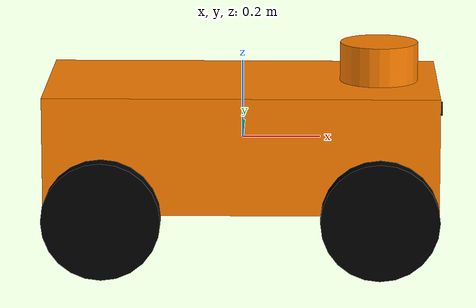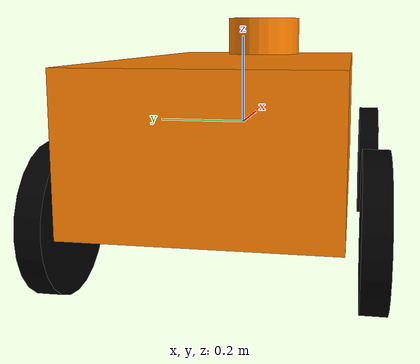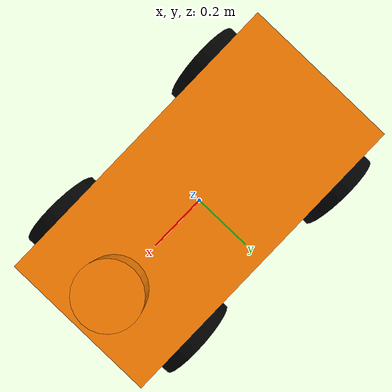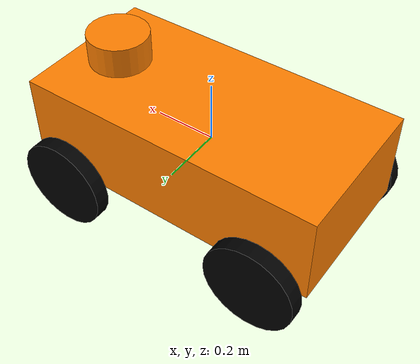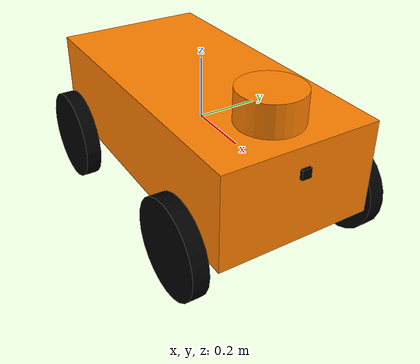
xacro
<?xml version="1.0"?>
<robot xmlns:xacro="http://www.ros.org/wiki/xacro" name="rover">
    <!-- to specify colours -->
    <material name="orange">
        <color rgba="1 0.5 0 1"/>
    </material>
    <material name="black">
        <color rgba="0 0 0 1"/>
    </material>

    <!-- argument: use for sensor topic namespacing -->
    <xacro:arg name="robot_name" default="rover"/>

    <!-- properties -->
    <xacro:property name="wheel_radius" value="0.15"/>
    <xacro:property name="wheel_width" value="0.05"/>
    <xacro:property name="chassis_length" value="1.0"/>
    <xacro:property name="chassis_width" value="0.5"/>
    <xacro:property name="chassis_height" value="0.3"/>
    <xacro:property name="wheel_mass" value="2"/>
    <xacro:property name="chassis_mass" value="10"/>
    <xacro:property name="camera_size" value="0.03"/>
    <xacro:property name="camera_thickness" value="0.01"/>
    <xacro:property name="lidar_size" value="0.1"/>
    <xacro:property name="odometry_update_rate" value="30"/>

    <!-- macros -->
    <xacro:macro name="box_inertia" params="mass l w h">
        <inertial>
            <mass value="${mass}"/>
            <inertia ixx="${mass * (h*h + w*w) / 12}" ixy="0" ixz="0" iyy="${mass * (l*l + h*h) / 12}" iyz="0" izz="${mass * (l*l + w*w) / 12}"/>
        </inertial>
    </xacro:macro>

    <xacro:macro name="cylinder_inertia" params="mass radius width">
        <inertial>
            <mass value="${mass}"/>
            <inertia ixx="${0.25 * mass * radius * radius + (1/12) * mass * width * width}" ixy="0" ixz="0" iyy="${0.25 * mass * radius * radius + (1/12) * mass * width * width}" iyz="0" izz="${0.5 * mass * radius * radius}"/>
        </inertial>
    </xacro:macro>

    <xacro:macro name="wheel" params="name wheel_radius wheel_width wheel_mass">
        <link name="${name}">
            <visual>
                <geometry>
                    <cylinder length="${wheel_width}" radius="${wheel_radius}"/>
                </geometry>
                <origin rpy="-1.57075 0 0" xyz="0 0 0"/>
                <material name="black"/>
            </visual>
            <collision>
                <geometry>
                    <cylinder length="${wheel_width}" radius="${wheel_radius}"/>
                </geometry>
                <origin rpy="-1.57075 0 0" xyz="0 0 0"/>
            </collision>
            <xacro:cylinder_inertia mass="${wheel_mass}" radius="${wheel_radius}" width="${wheel_width}"/>
        </link>
    </xacro:macro>

    <xacro:macro name="wheel_joints" params="wheel_name x y z">
        <joint name="${wheel_name}_joint" type="continuous">
            <parent link="chassis"/>
            <child link="${wheel_name}"/>
            <origin rpy="0 0 0" xyz="${x} ${y} ${z}"/>
            <axis xyz="0 1 0"/>
        </joint>
    </xacro:macro>

    <xacro:macro name="friction_coefficients" params="link_name">
        <gazebo reference="${link_name}">
            <mu1>1.0</mu1> <!-- High friction for forward traction -->
            <mu2>0.5</mu2> <!-- Low friction for sideways skidding -->
            <fdir1>1 0 0</fdir1> <!-- Rolling direction (X-axis of the link) -->
            <slip1>0.0</slip1>
            <slip2>0.1</slip2> <!-- Allow sliding on the lateral axis -->
        </gazebo>
    </xacro:macro>

    <!-- links -->
    <link name="base_link" />

    <link name="chassis">
        <visual>
            <geometry>
                <box size="${chassis_length} ${chassis_width} ${chassis_height}"/>
            </geometry>
            <material name="orange"/>
        </visual>
        <collision>
            <geometry>
                <box size="${chassis_length} ${chassis_width} ${chassis_height}"/>
            </geometry>
        </collision>
        <xacro:box_inertia mass="${chassis_mass}" l="${chassis_length}" w="${chassis_width}" h="${chassis_height}"/>
    </link>

    <xacro:wheel name="rear_left_wheel" wheel_radius="${wheel_radius}" wheel_width="${wheel_width}" wheel_mass="${wheel_mass}"/>
    <xacro:wheel name="rear_right_wheel" wheel_radius="${wheel_radius}" wheel_width="${wheel_width}" wheel_mass="${wheel_mass}"/>
    <xacro:wheel name="front_left_wheel" wheel_radius="${wheel_radius}" wheel_width="${wheel_width}" wheel_mass="${wheel_mass}"/>
    <xacro:wheel name="front_right_wheel" wheel_radius="${wheel_radius}" wheel_width="${wheel_width}" wheel_mass="${wheel_mass}"/>

    <link name="camera_link">
        <visual>
            <geometry>
                <box size="${camera_thickness} ${camera_size} ${camera_size}"/>
            </geometry>
            <material name="black"/>
        </visual>
        <collision>
            <geometry>
                <box size="${camera_thickness} ${camera_size} ${camera_size}"/>
            </geometry>
            <xacro:box_inertia mass="0.001" l="${camera_thickness}" w="${camera_size}" h="${camera_size}"/>
        </collision>
    </link>

    <link name="camera_link_optical" />

    <link name="lidar_link">
        <visual>
            <geometry>
                <cylinder radius="${lidar_size}" length="${lidar_size}"/>
            </geometry>
            <material name="orange" />
        </visual>
        <collision>
            <geometry>
                <cylinder radius="${lidar_size}" length="${lidar_size}"/>
            </geometry>
            <xacro:cylinder_inertia mass="0.1" radius="${lidar_size}" width="${lidar_size}"/>
        </collision>
    </link>

    <!-- joint -->
    <joint name="chassis_to_base_link_joint" type="fixed">
        <parent link="base_link"/>
        <child link="chassis"/>
    </joint>

    <xacro:wheel_joints wheel_name="front_left_wheel" x="${chassis_length/2 - wheel_radius}" y="${chassis_width/2 + wheel_width}" z="${-chassis_height/2}"/>
    <xacro:wheel_joints wheel_name="front_right_wheel" x="${chassis_length/2 - wheel_radius}" y="${-chassis_width/2 - wheel_width}" z="${-chassis_height/2}"/>
    <xacro:wheel_joints wheel_name="rear_left_wheel" x="${-chassis_length/2 + wheel_radius}" y="${chassis_width/2 + wheel_width}" z="${-chassis_height/2}"/>
    <xacro:wheel_joints wheel_name="rear_right_wheel" x="${-chassis_length/2 + wheel_radius}" y="${-chassis_width/2 - wheel_width}" z="${-chassis_height/2}"/>

    <joint name="camera_link_joint" type="fixed">
        <parent link="chassis"/>
        <child link="camera_link"/>
        <origin rpy="0.0 0.0 0.0" xyz="${chassis_length/2 + camera_thickness} 0.0 ${chassis_height/4}"/>
    </joint>

    <joint name="camera_link_optical_joint" type="fixed">
        <parent link="camera_link"/>
        <child link="camera_link_optical"/>
        <origin rpy="${-pi/2} 0.0 ${-pi/2}" xyz="${camera_thickness} 0.0 0.0"/>
    </joint>

    <joint name="lidar_link_joint" type="fixed">
        <parent link="chassis"/>
        <child link="lidar_link"/>
        <origin rpy="0.0 0.0 0.0" xyz="${chassis_length/2 - 0.15} 0.0 ${chassis_height/2 + lidar_size/2}"/>
    </joint>

    <!-- wheels friction -->
    <xacro:friction_coefficients link_name="rear_left_wheel" />
    <xacro:friction_coefficients link_name="rear_right_wheel" />
    <xacro:friction_coefficients link_name="front_left_wheel" />
    <xacro:friction_coefficients link_name="front_right_wheel" />

    <!-- gazebo plugins -->
    <xacro:include filename="$(find swarm_bringup)/models/rover/rover.gazebo" />

</robot>
